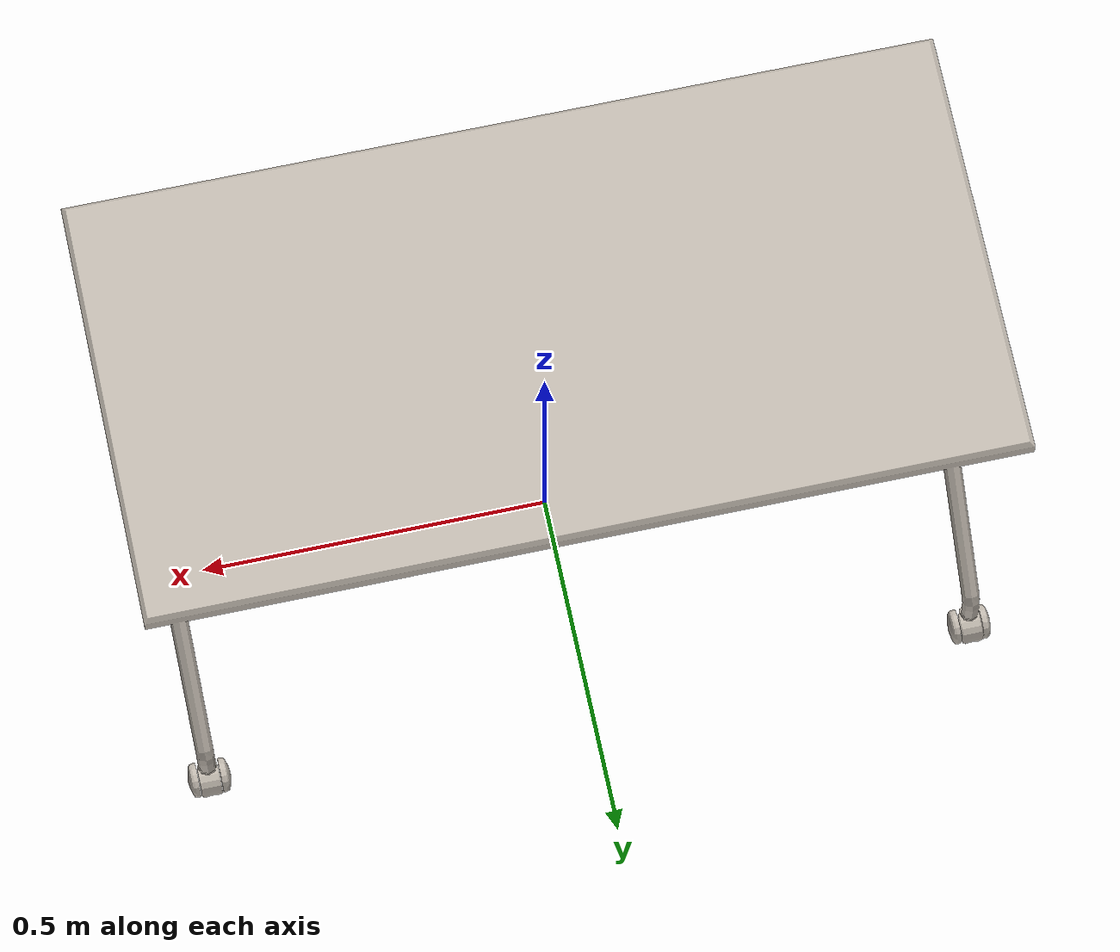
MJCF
<mujoco model="office_table">
  <compiler meshdir="." texturedir="."/>
  <asset>
    <texture name="office_table_color" type="2d" file="textures/DefaultMaterial_baseColor.png"/>
    <material name="office_table" texture="office_table_color"/>
    <material name="office_table_frame" rgba="0.55 0.56 0.58 1"/>
    <mesh name="office_table" file="office_table.obj"/>
  </asset>

  <default>
    <default class="office_table_collision">
      <geom type="box" material="office_table_frame" group="3"/>
    </default>
  </default>

  <worldbody>
    <body name="office_table">
      <geom name="office_table_mesh" type="mesh" mesh="office_table" material="office_table"
            contype="0" conaffinity="0" group="2"/>

      <!-- Top slab. -->
      <geom class="office_table_collision" name="office_table_top"
            pos="0 0 0.6995" size="0.600 0.300 0.0175"/>

      <geom class="office_table_collision" name="office_table_r_column"
            pos="0.55 0 0.516" size="0.012 0.028 0.166"/>
      <geom class="office_table_collision" name="office_table_r_leg_front"
            pos="0.55 0.178 0.225" quat="0.914995 0.403464 0 0" size="0.012 0.019 0.185"/>
      <geom class="office_table_collision" name="office_table_r_leg_back"
            pos="0.55 -0.178 0.225" quat="0.914995 -0.403464 0 0" size="0.012 0.019 0.185"/>
      <geom class="office_table_collision" name="office_table_r_foot_front"
            pos="0.55 0.305 0.045" size="0.030 0.028 0.045"/>
      <geom class="office_table_collision" name="office_table_r_foot_back"
            pos="0.55 -0.305 0.045" size="0.030 0.028 0.045"/>

      <!-- Left A-frame (x = -0.55), mirrored. -->
      <geom class="office_table_collision" name="office_table_l_column"
            pos="-0.55 0 0.516" size="0.012 0.028 0.166"/>
      <geom class="office_table_collision" name="office_table_l_leg_front"
            pos="-0.55 0.178 0.225" quat="0.914995 0.403464 0 0" size="0.012 0.019 0.185"/>
      <geom class="office_table_collision" name="office_table_l_leg_back"
            pos="-0.55 -0.178 0.225" quat="0.914995 -0.403464 0 0" size="0.012 0.019 0.185"/>
      <geom class="office_table_collision" name="office_table_l_foot_front"
            pos="-0.55 0.305 0.045" size="0.030 0.028 0.045"/>
      <geom class="office_table_collision" name="office_table_l_foot_back"
            pos="-0.55 -0.305 0.045" size="0.030 0.028 0.045"/>
    </body>
  </worldbody>
</mujoco>
